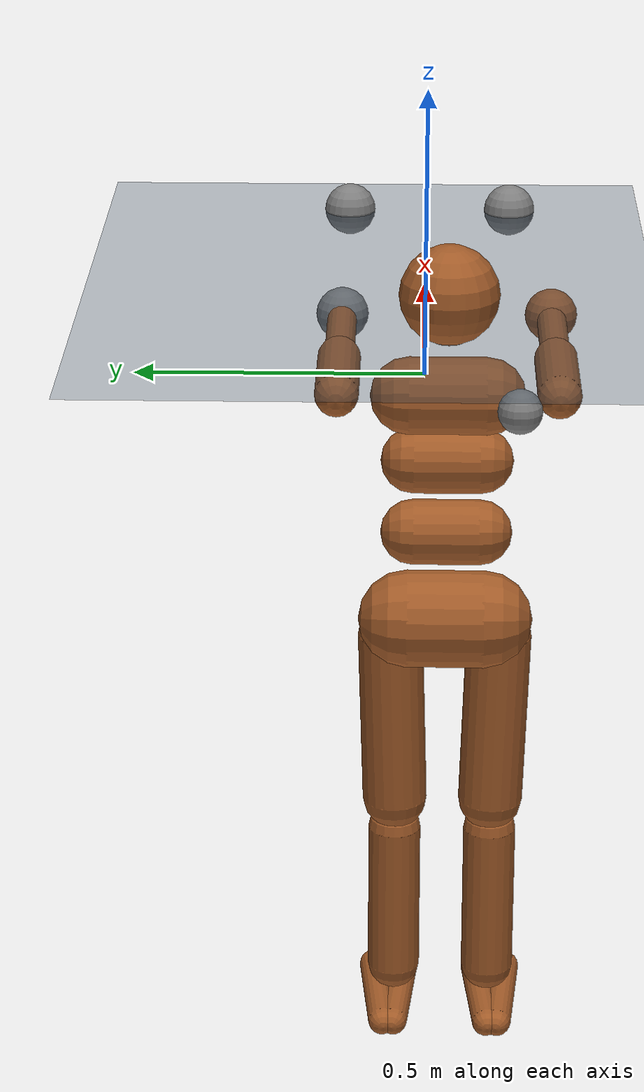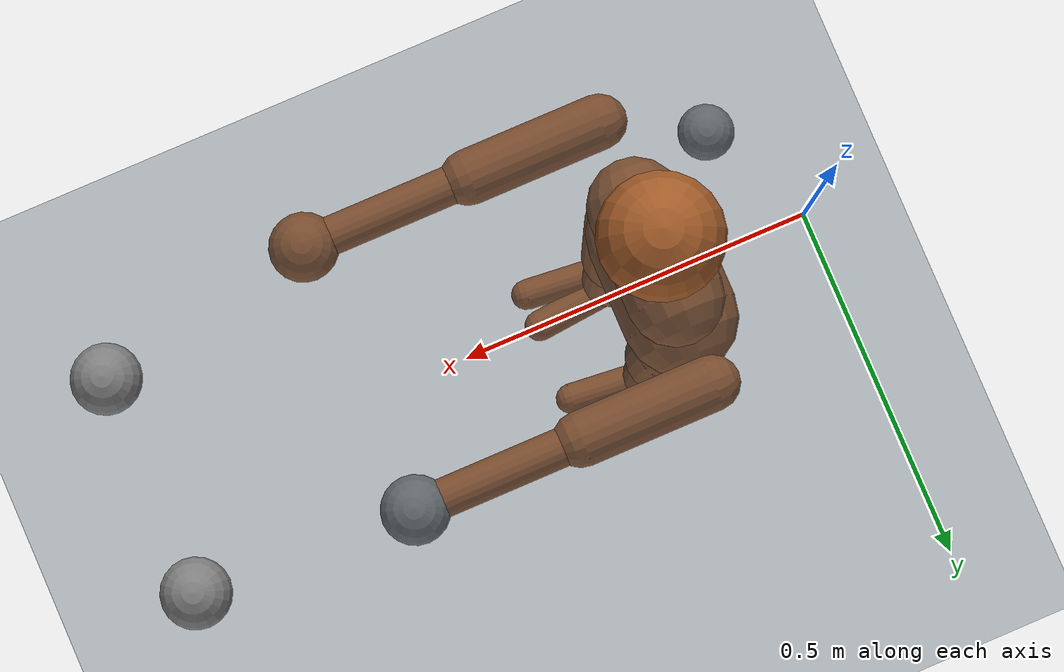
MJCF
<mujoco model="Rasras_2s1.SLDASM">
    <compiler angle="radian" />

     <size njmax="500" nconmax="100" />
     <size nconmax="50" njmax="200" nstack="10000" />
     <default>
        <geom condim="1" material="matgeom" />
    </default>
     <option timestep="0.005" iterations="50" solver="Newton" tolerance="1e-10" jacobian="dense" cone="pyramidal" gravity="0.0 0.0 0.0" />

     <visual>
        <map force="0.1" zfar="30" />
        <rgba haze="0.15 0.25 0.35 1" />
        <quality shadowsize="2048" />
        <global offwidth="800" offheight="800" />
    </visual>

    <asset>
        <texture type="skybox" builtin="gradient" rgb1="0.3 0.5 0.7" rgb2="0 0 0" width="512" height="512" />
        <texture name="texplane" type="2d" builtin="checker" rgb1=".2 .3 .4" rgb2=".1 0.15 0.2" width="512" height="512" mark="cross" markrgb=".8 .8 .8" />
        <texture name="texgeom" type="cube" builtin="flat" mark="cross" width="127" height="1278" rgb1="0.8 0.6 0.4" rgb2="0.8 0.6 0.4" markrgb="1 1 1" random="0.01" />
        <material name="matplane" reflectance="0.3" texture="texplane" texrepeat="1 1" texuniform="true" />
        <material name="matgeom" texture="texgeom" texuniform="true" rgba="0.8 0.6 .4 1" />
        </asset>
<worldbody>
         <geom name="floor" pos="0 0 0" size="0 0 .25" type="plane" material="matplane" condim="3" />
         <light directional="false" diffuse=".2 .2 .2" specular="0 0 0" pos="0 0 5" dir="0 0 -1" castshadow="false" />
         <light mode="targetbodycom" target="torso" directional="false" diffuse=".8 .8 .8" specular="0.3 0.3 0.3" pos="0 0 4.0" dir="0 0 -1" />

     <body name="dummpy_back" pos="0 0 0" euler="0 0 0">
      <freejoint name="limb_j" />

     <body name="backboard" pos="0.06625 -0.1675 -0.09135" euler="0 0 0">
        <body name="Link1_r" pos="0 0 0">
            <inertial pos="0.03744 -6.32191e-05 0.0898046" quat="0.542829 0.453396 0.452744 0.542947" mass="1.11245" diaginertia="0.00164399 0.00121764 0.0010799" />
            <joint name="joint1_r" pos="0 0 0" axis="0 0 1" />
            <site name="origin_dummy_r" pos="0 0 0" size="0.04" />

            <body name="Link2_r" pos="0.083 0 0.09315">
                <inertial pos="0.205707 -0.0001747 -0.00313993" quat="0.483851 0.515809 0.511948 0.487584" mass="0.348736" diaginertia="0.000635422 0.000606072 8.90075e-05" />
                <joint name="joint2_r" pos="0 0 0" axis="0 -1 0" />
                <body name="Link3_r" pos="0.39094 0 -0.029583">
                    <inertial pos="0.126901 4.50392e-05 0.0228136" quat="0.524455 0.474599 0.473957 0.524468" mass="0.330625" diaginertia="0.000460331 0.000424556 0.000103961" />
                    <joint name="joint3_r" pos="0 0 0" axis="0 -1 0" />
                    <body name="Link4_r" pos="0.33154 0 0.028583">
                        <inertial pos="0.011945 0.000681491 0.000631388" quat="0.270507 0.653331 0.270682 0.653235" mass="0.10584" diaginertia="2.97897e-05 2.83802e-05 2.06298e-05" />
                        <joint name="joint4_r" pos="0 0 0" axis="0 0 1" />
                        <body name="Link5_r" pos="0.023945 0 0">
                            <inertial pos="0.0397421 4.99911e-05 0.0109303" quat="0.703324 0.0730473 0.0730533 0.703323" mass="0.102904" diaginertia="2.96671e-05 2.35478e-05 1.72507e-05" />
                            <joint name="joint5_r" pos="0 0 0" axis="0 -1 0" />
                            <body name="Link6_r" pos="0.067104 0 0">
                                <inertial pos="-0.00328947 2.63719e-05 0.0162948" quat="0.999992 0.000457221 -0.00404015 -6.55525e-06" mass="0.00758217" diaginertia="4.6713e-06 3.08404e-06 1.61392e-06" />
                                <joint name="joint6_r" pos="0 0 0" axis="-1 0 0" />
                                <site name="robot_tip_r" pos="0 0 0" size="0.05" />
                            </body>
                        </body>
                    </body>
                </body>
            </body>
        </body>
        <body name="Link1_l" pos="0 0.317 0">
            <inertial pos="0.03744 -6.32191e-05 0.0898046" quat="0.542829 0.453396 0.452744 0.542947" mass="1.11245" diaginertia="0.00164399 0.00121764 0.0010799" />
            <joint name="joint1_l" pos="0 0 0" axis="0 0 1" />
            <body name="Link2_l" pos="0.083 0 0.09315">
                <inertial pos="0.205707 -0.0001747 -0.00313993" quat="0.483851 0.515809 0.511948 0.487584" mass="0.348736" diaginertia="0.000635422 0.000606072 8.90075e-05" />
                <joint name="joint2_l" pos="0 0 0" axis="0 -1 0" />
                <body name="Link3_l" pos="0.39094 0 -0.029583">
                    <inertial pos="0.126901 4.50392e-05 0.0228136" quat="0.524455 0.474599 0.473957 0.524468" mass="0.330625" diaginertia="0.000460331 0.000424556 0.000103961" />
                    <joint name="joint3_l" pos="0 0 0" axis="0 -1 0" />
                    <body name="Link4_l" pos="0.33154 0 0.028583">
                        <inertial pos="0.011945 0.000681491 0.000631388" quat="0.270507 0.653331 0.270682 0.653235" mass="0.10584" diaginertia="2.97897e-05 2.83802e-05 2.06298e-05" />
                        <joint name="joint4_l" pos="0 0 0" axis="0 0 1" />
                        <body name="Link5_l" pos="0.023945 0 0">
                            <inertial pos="0.0397421 4.99911e-05 0.0109303" quat="0.703324 0.0730473 0.0730533 0.703323" mass="0.102904" diaginertia="2.96671e-05 2.35478e-05 1.72507e-05" />
                            <joint name="joint5_l" pos="0 0 0" axis="0 -1 0" />
                            <body name="Link6_l" pos="0.0671038 0 0">
                                <inertial pos="-0.00328947 2.63719e-05 0.0162948" quat="0.999992 0.000457221 -0.00404015 -6.55525e-06" mass="0.00758217" diaginertia="4.6713e-06 3.08404e-06 1.61392e-06" />
                                <joint name="joint6_l" pos="0 0 0" axis="-1 0 0" />
                                <site name="robot_tip_l" pos="0 0 0" size="0.05" />
                            </body>
                        </body>
                    </body>
                </body>
            </body>
        </body>
     </body>

      <body name="dummpy_human" pos="0.19625 -0.2325 -0.11135" euler="0 0 0">

        <body name="torso" pos="0 0.19 0" euler="0 0 0">

            <geom name="torso1" type="capsule" fromto="0 -.07 0 0 .07 0" size="0.07" />

            <geom name="head" type="sphere" pos="0 0 .19" size=".09" />

            <geom name="uwaist" type="capsule" fromto="-.01 -.06 -.12 -.01 .06 -.12" size="0.06" />

            <body name="lwaist" pos="-.01 0.0 -0.260" quat="1.000 0 -0.002 0">
                <geom name="lwaist" type="capsule" fromto="0 -.06 0 0 .06 0" size="0.06" />

             <body name="pelvis" pos="0 0 -0.165" quat="1.000 0.0 -0.002 0">
                    <geom name="butt" type="capsule" fromto="-.02 -.07 0 -.02 .07 0" size="0.09" />

                    <body name="right_thigh" pos="0 -0.1 -0.04">
                        <geom name="right_thigh1" type="capsule" fromto="0 0 0 0 0.01 -.34" size="0.06" />
                        <body name="right_shin" pos="0 0.01 -0.403">
                            <geom name="right_shin1" type="capsule" fromto="0 0 0 0 0 -.3" size="0.049" />
                            <body name="right_foot" pos="0 0 -.39">
                                <geom name="right_foot_cap1" type="capsule" fromto="-.07 -0.02 0 0.14 -0.04 0" size="0.027" />
                                <geom name="right_foot_cap2" type="capsule" fromto="-.07 0 0 0.14  0.02 0" size="0.027" />
                            </body>
                        </body>
                    </body>

                    <body name="left_thigh" pos="0 0.1 -0.04">
                        <geom name="left_thigh1" type="capsule" fromto="0 0 0 0 -0.01 -.34" size="0.06" />
                        <body name="left_shin" pos="0 -0.01 -0.403">
                            <geom name="left_shin1" type="capsule" fromto="0 0 0 0 0 -.3" size="0.049" />
                            <body name="left_foot" pos="0 0 -.39">
                                <geom name="left_foot_cap1" type="capsule" fromto="-.07 0.02 0 0.14 0.04 0" size="0.027" />
                                <geom name="left_foot_cap2" type="capsule" fromto="-.07 0 0 0.14  -0.02 0" size="0.027" />
                            </body>
                        </body>
                    </body>

                </body>
            </body>

            <body name="right_upper_arm" pos="-0.00 -0.20 0">

                <joint name="right_shoulder" type="ball" pos="0 0 0" stiffness="1" armature="0.0068" />
                <geom name="right_uarm1" type="capsule" fromto="0 0 0 0.20 0 0" size="0.04 0.16" />

                <body name="right_lower_arm" pos="0.2 0 0">
                    <joint name="right_elbow" type="hinge" pos="0 0 0" axis="0 -1 0" range="-90 50" stiffness="0" armature="0.0028" />
                    <geom name="right_larm" type="capsule" fromto="0.0 0.0 0.0 .25 .0 .0" size="0.028" />
                    <geom name="right_hand" type="sphere" pos=".25 .0 .0" size="0.05" />
                    <site name="arm_tip_r" pos="0.25 0 0" size="0.05" />
                </body>
            </body>

             <body name="left_upper_arm" pos="0.00 0.20 0">

                <joint name="left_shoulder" type="ball" pos="0 0 0" stiffness="1" armature="0.0068" />
                <geom name="left_uarm1" type="capsule" fromto="0 0 0 0.20 0 0" size="0.04 0.16" />
                <body name="left_lower_arm" pos="0.2 0 0">
                    <joint name="left_elbow" type="hinge" pos="0 0 0" axis="0 -1 0" range="-90 50" stiffness="0" armature="0.0028" />
                    <geom name="left_larm" type="capsule" fromto="0.0 0.0 0.0 .25 .0 .0" size="0.028" />
                    <geom name="left_hand" type="sphere" pos=".25 .0 .0" size="0.04" />
                    <site name="arm_tip_l" pos="0.25 0 0" size="0.05" />
                </body>
            </body>
        </body>
      </body>
     </body>
    </worldbody>
    <sensor>
                <framepos objtype="site" objname="arm_tip_r" />
                <framepos objtype="site" objname="arm_tip_l" />
                <framepos objtype="site" objname="robot_tip_r" />
                <framepos objtype="site" objname="robot_tip_l" />
    </sensor>
   </mujoco>
